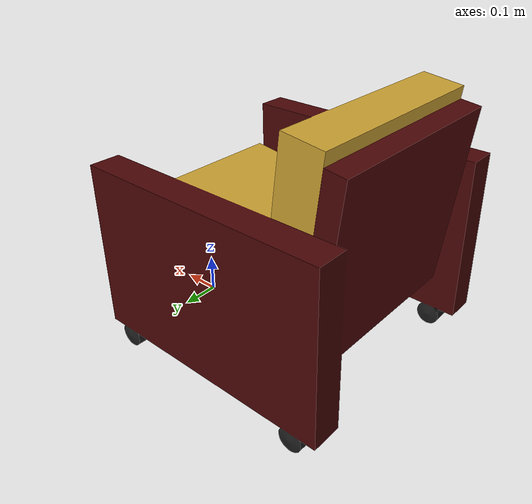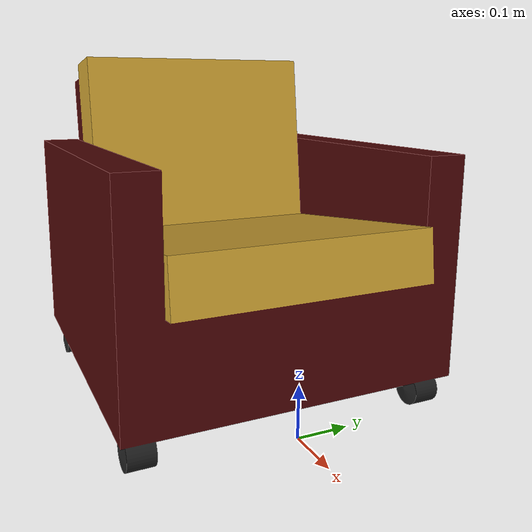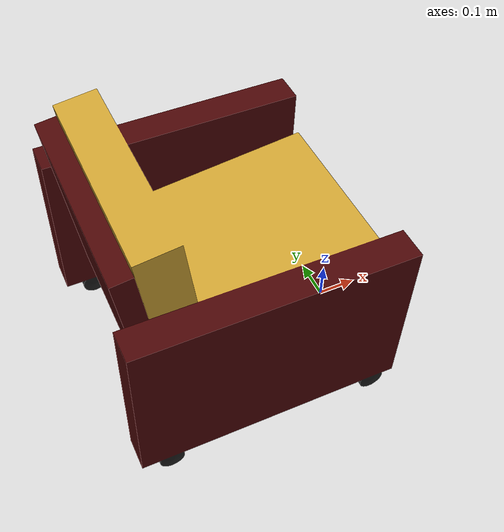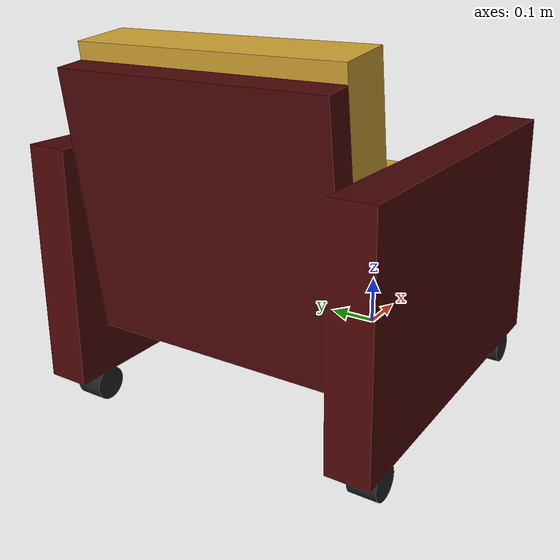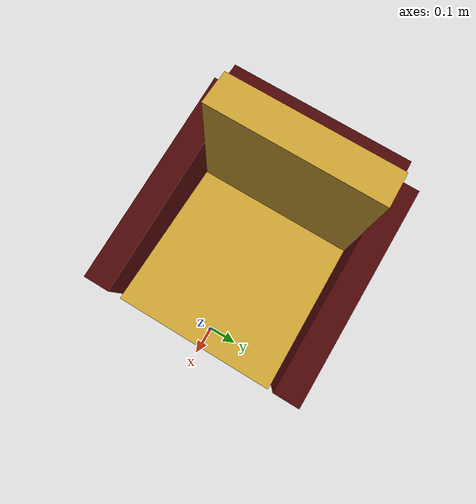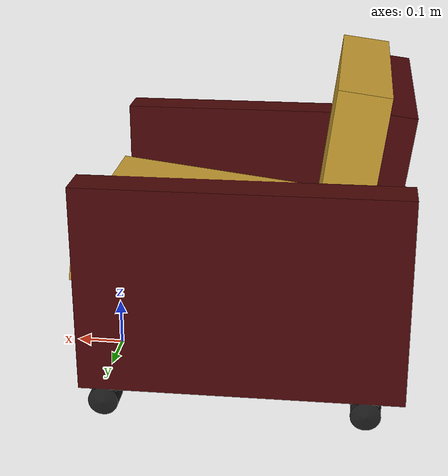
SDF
<?xml version="1.0" ?>
<sdf version="1.5">
  <model name="armchair">
    <static>true</static>
    <link name="armchair">
      <collision name="armchair">
        <pose>0 0 0 0 0 0</pose>
        <geometry>
          <mesh>
            <uri>model://armchair/meshes/model.dae</uri>
          </mesh>
        </geometry>
      </collision>

      <visual name="armchair">
      <cast_shadows>true</cast_shadows>
        <geometry>
          <mesh>
          <uri>model://armchair/meshes/model.dae</uri>
        </mesh>
        </geometry>
      </visual>
    </link>
  </model>
</sdf>
